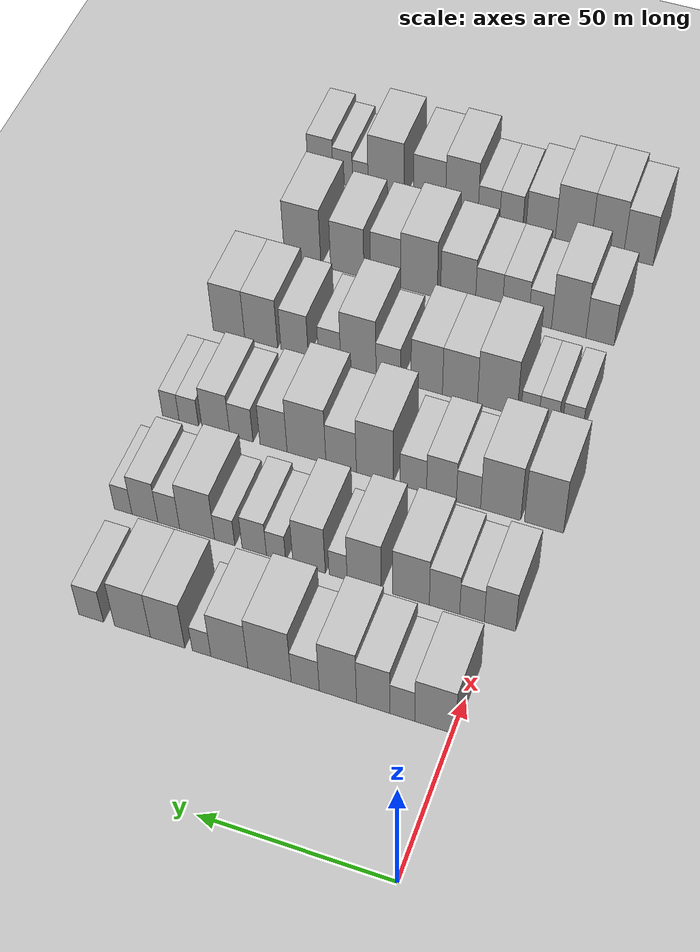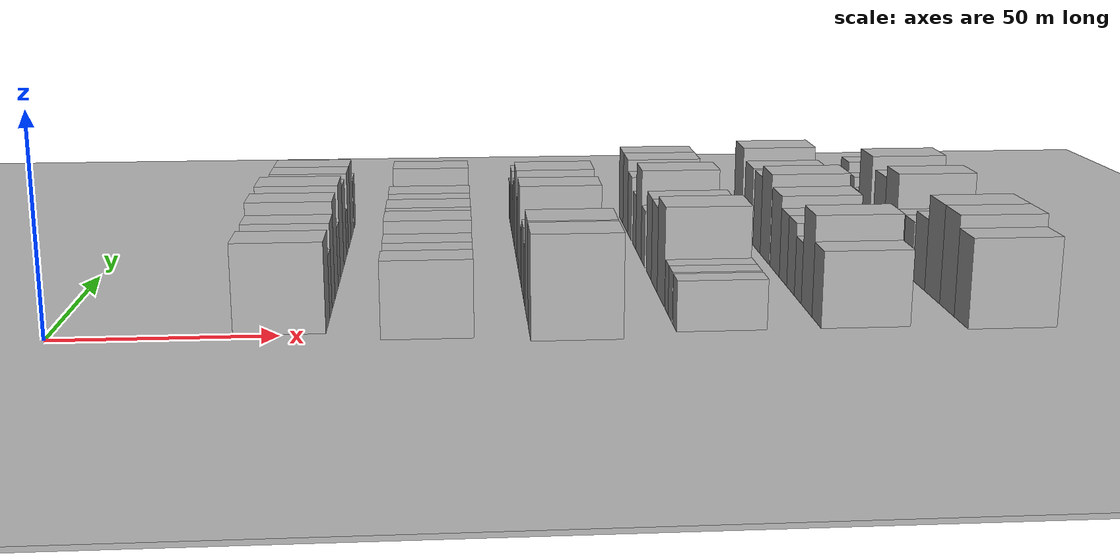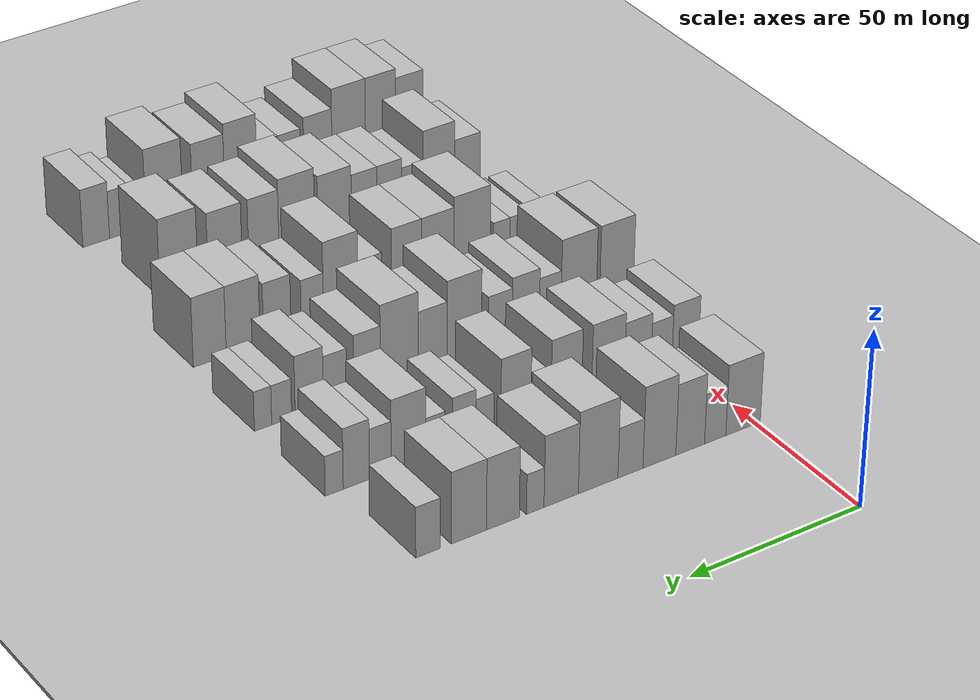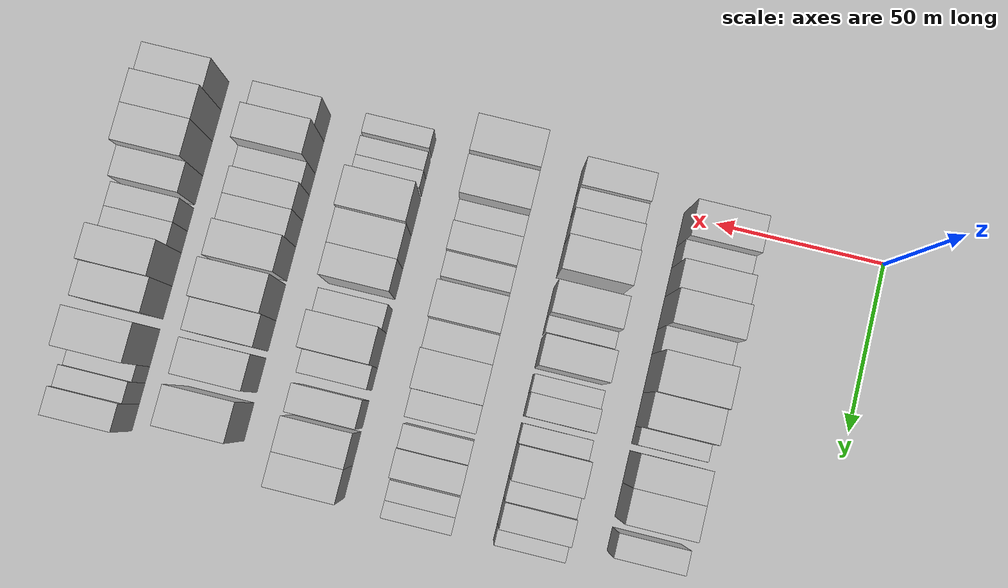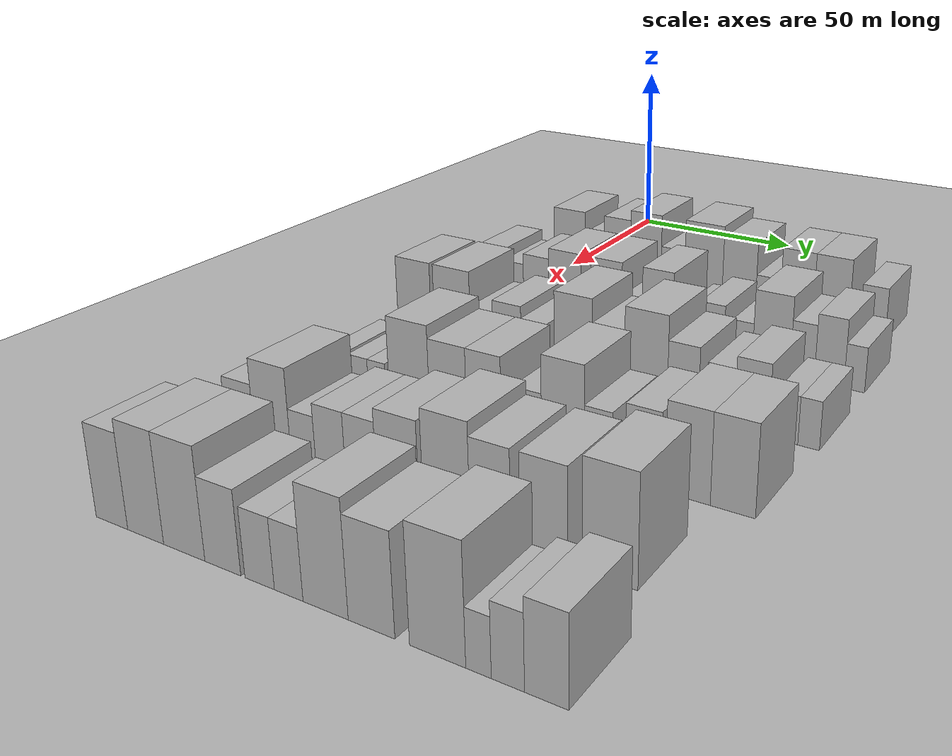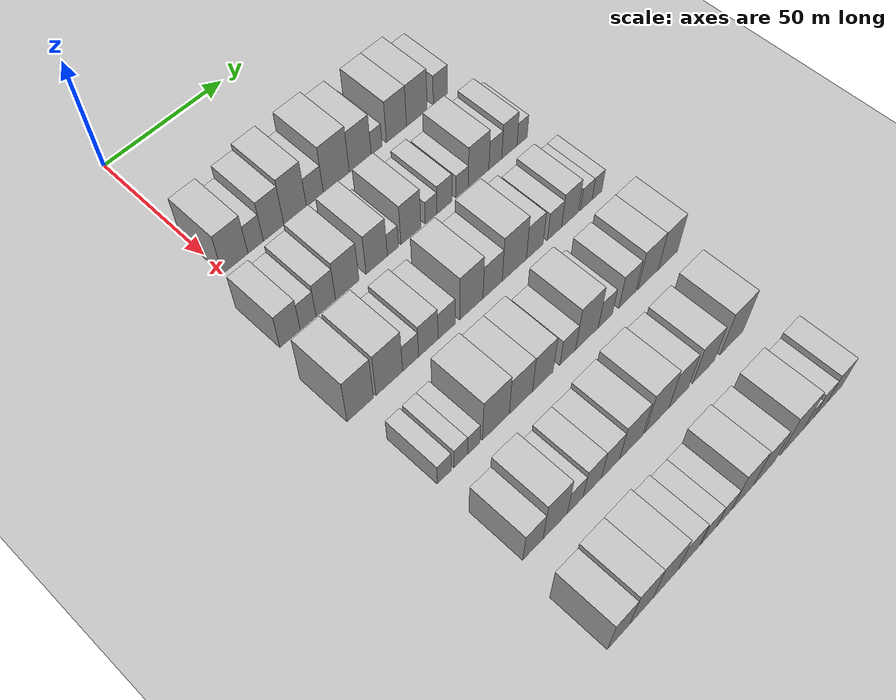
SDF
<sdf version="1.6">
 <world name="default">
  <include><name>ground_plane_1</name><uri>model://HANNAS_ground_plane</uri></include>
  <include>
   <name>ground_plane_2</name>
   <uri>model://HANNAS_ground_plane</uri>
   <pose>100 0 0  0 0 0</pose>
  </include>
  <model name="building_64">
   <static>1</static>
   <pose>50.0000 4.4549 0 0.000000 0.000000 0.000000</pose>
   <link name="link">
    <pose>0 0 10.50 0 0 0</pose>
    <collision name="collision"><geometry><box><size>20.0000 10.4666 21.0000</size></box></geometry></collision>
    <visual name="visual">
     <cast_shadows>0</cast_shadows>
     <geometry><box><size>20.0000 10.4666 21.0000</size></box></geometry>
     <material>
      <script>
       <uri>model://HANNAS_wall/materials/scripts</uri>
       <uri>model://HANNAS_wall/materials/textures</uri>
       <name>vrc/HANNAS_wall</name>
      </script>
     </material>
    </visual>
   </link>
  </model>
  <model name="building_65">
   <static>1</static>
   <pose>50.0000 12.8888 0 0.000000 0.000000 0.000000</pose>
   <link name="link">
    <pose>0 0 7.50 0 0 0</pose>
    <collision name="collision"><geometry><box><size>20.0000 6.4012 15.0000</size></box></geometry></collision>
    <visual name="visual">
     <cast_shadows>0</cast_shadows>
     <geometry><box><size>20.0000 6.4012 15.0000</size></box></geometry>
     <material>
      <script>
       <uri>model://HANNAS_wall/materials/scripts</uri>
       <uri>model://HANNAS_wall/materials/textures</uri>
       <name>vrc/HANNAS_wall</name>
      </script>
     </material>
    </visual>
   </link>
  </model>
  <model name="building_66">
   <static>1</static>
   <pose>50.0000 20.3909 0 0.000000 0.000000 0.000000</pose>
   <link name="link">
    <pose>0 0 10.50 0 0 0</pose>
    <collision name="collision"><geometry><box><size>20.0000 8.6029 21.0000</size></box></geometry></collision>
    <visual name="visual">
     <cast_shadows>0</cast_shadows>
     <geometry><box><size>20.0000 8.6029 21.0000</size></box></geometry>
     <material>
      <script>
       <uri>model://HANNAS_wall/materials/scripts</uri>
       <uri>model://HANNAS_wall/materials/textures</uri>
       <name>vrc/HANNAS_wall</name>
      </script>
     </material>
    </visual>
   </link>
  </model>
  <model name="building_67">
   <static>1</static>
   <pose>50.0000 29.5546 0 0.000000 0.000000 0.000000</pose>
   <link name="link">
    <pose>0 0 12.00 0 0 0</pose>
    <collision name="collision"><geometry><box><size>20.0000 9.7245 24.0000</size></box></geometry></collision>
    <visual name="visual">
     <cast_shadows>0</cast_shadows>
     <geometry><box><size>20.0000 9.7245 24.0000</size></box></geometry>
     <material>
      <script>
       <uri>model://HANNAS_wall/materials/scripts</uri>
       <uri>model://HANNAS_wall/materials/textures</uri>
       <name>vrc/HANNAS_wall</name>
      </script>
     </material>
    </visual>
   </link>
  </model>
  <model name="building_68">
   <static>1</static>
   <pose>50.0000 38.1006 0 0.000000 0.000000 0.000000</pose>
   <link name="link">
    <pose>0 0 7.50 0 0 0</pose>
    <collision name="collision"><geometry><box><size>20.0000 7.3676 15.0000</size></box></geometry></collision>
    <visual name="visual">
     <cast_shadows>0</cast_shadows>
     <geometry><box><size>20.0000 7.3676 15.0000</size></box></geometry>
     <material>
      <script>
       <uri>model://HANNAS_wall/materials/scripts</uri>
       <uri>model://HANNAS_wall/materials/textures</uri>
       <name>vrc/HANNAS_wall</name>
      </script>
     </material>
    </visual>
   </link>
  </model>
  <model name="building_69">
   <static>1</static>
   <pose>50.0000 47.5332 0 0.000000 0.000000 0.000000</pose>
   <link name="link">
    <pose>0 0 12.00 0 0 0</pose>
    <collision name="collision"><geometry><box><size>20.0000 11.4976 24.0000</size></box></geometry></collision>
    <visual name="visual">
     <cast_shadows>0</cast_shadows>
     <geometry><box><size>20.0000 11.4976 24.0000</size></box></geometry>
     <material>
      <script>
       <uri>model://HANNAS_wall/materials/scripts</uri>
       <uri>model://HANNAS_wall/materials/textures</uri>
       <name>vrc/HANNAS_wall</name>
      </script>
     </material>
    </visual>
   </link>
  </model>
  <model name="building_70">
   <static>1</static>
   <pose>50.0000 58.2243 0 0.000000 0.000000 0.000000</pose>
   <link name="link">
    <pose>0 0 10.50 0 0 0</pose>
    <collision name="collision"><geometry><box><size>20.0000 9.8845 21.0000</size></box></geometry></collision>
    <visual name="visual">
     <cast_shadows>0</cast_shadows>
     <geometry><box><size>20.0000 9.8845 21.0000</size></box></geometry>
     <material>
      <script>
       <uri>model://HANNAS_wall/materials/scripts</uri>
       <uri>model://HANNAS_wall/materials/textures</uri>
       <name>vrc/HANNAS_wall</name>
      </script>
     </material>
    </visual>
   </link>
  </model>
  <model name="building_71">
   <static>1</static>
   <pose>50.0000 65.6764 0 0.000000 0.000000 0.000000</pose>
   <link name="link">
    <pose>0 0 6.00 0 0 0</pose>
    <collision name="collision"><geometry><box><size>20.0000 5.0198 12.0000</size></box></geometry></collision>
    <visual name="visual">
     <cast_shadows>0</cast_shadows>
     <geometry><box><size>20.0000 5.0198 12.0000</size></box></geometry>
     <material>
      <script>
       <uri>model://HANNAS_wall/materials/scripts</uri>
       <uri>model://HANNAS_wall/materials/textures</uri>
       <name>vrc/HANNAS_wall</name>
      </script>
     </material>
    </visual>
   </link>
  </model>
  <model name="building_72">
   <static>1</static>
   <pose>50.0000 74.8560 0 0.000000 0.000000 0.000000</pose>
   <link name="link">
    <pose>0 0 10.50 0 0 0</pose>
    <collision name="collision"><geometry><box><size>20.0000 9.3394 21.0000</size></box></geometry></collision>
    <visual name="visual">
     <cast_shadows>0</cast_shadows>
     <geometry><box><size>20.0000 9.3394 21.0000</size></box></geometry>
     <material>
      <script>
       <uri>model://HANNAS_wall/materials/scripts</uri>
       <uri>model://HANNAS_wall/materials/textures</uri>
       <name>vrc/HANNAS_wall</name>
      </script>
     </material>
    </visual>
   </link>
  </model>
  <model name="building_73">
   <static>1</static>
   <pose>50.0000 84.4274 0 0.000000 0.000000 0.000000</pose>
   <link name="link">
    <pose>0 0 10.50 0 0 0</pose>
    <collision name="collision"><geometry><box><size>20.0000 9.8034 21.0000</size></box></geometry></collision>
    <visual name="visual">
     <cast_shadows>0</cast_shadows>
     <geometry><box><size>20.0000 9.8034 21.0000</size></box></geometry>
     <material>
      <script>
       <uri>model://HANNAS_wall/materials/scripts</uri>
       <uri>model://HANNAS_wall/materials/textures</uri>
       <name>vrc/HANNAS_wall</name>
      </script>
     </material>
    </visual>
   </link>
  </model>
  <model name="building_74">
   <static>1</static>
   <pose>50.0000 95.7472 0 0.000000 0.000000 0.000000</pose>
   <link name="link">
    <pose>0 0 7.50 0 0 0</pose>
    <collision name="collision"><geometry><box><size>20.0000 6.8361 15.0000</size></box></geometry></collision>
    <visual name="visual">
     <cast_shadows>0</cast_shadows>
     <geometry><box><size>20.0000 6.8361 15.0000</size></box></geometry>
     <material>
      <script>
       <uri>model://HANNAS_wall/materials/scripts</uri>
       <uri>model://HANNAS_wall/materials/textures</uri>
       <name>vrc/HANNAS_wall</name>
      </script>
     </material>
    </visual>
   </link>
  </model>
  <model name="building_186">
   <static>1</static>
   <pose>82.0000 -1.7584 0 0.000000 0.000000 0.000000</pose>
   <link name="link">
    <pose>0 0 9.00 0 0 0</pose>
    <collision name="collision"><geometry><box><size>20.0000 8.2280 18.0000</size></box></geometry></collision>
    <visual name="visual">
     <cast_shadows>0</cast_shadows>
     <geometry><box><size>20.0000 8.2280 18.0000</size></box></geometry>
     <material>
      <script>
       <uri>model://HANNAS_wall/materials/scripts</uri>
       <uri>model://HANNAS_wall/materials/textures</uri>
       <name>vrc/HANNAS_wall</name>
      </script>
     </material>
    </visual>
   </link>
  </model>
  <model name="building_187">
   <static>1</static>
   <pose>82.0000 5.6068 0 0.000000 0.000000 0.000000</pose>
   <link name="link">
    <pose>0 0 7.50 0 0 0</pose>
    <collision name="collision"><geometry><box><size>20.0000 6.5024 15.0000</size></box></geometry></collision>
    <visual name="visual">
     <cast_shadows>0</cast_shadows>
     <geometry><box><size>20.0000 6.5024 15.0000</size></box></geometry>
     <material>
      <script>
       <uri>model://HANNAS_wall/materials/scripts</uri>
       <uri>model://HANNAS_wall/materials/textures</uri>
       <name>vrc/HANNAS_wall</name>
      </script>
     </material>
    </visual>
   </link>
  </model>
  <model name="building_188">
   <static>1</static>
   <pose>82.0000 12.8947 0 0.000000 0.000000 0.000000</pose>
   <link name="link">
    <pose>0 0 9.00 0 0 0</pose>
    <collision name="collision"><geometry><box><size>20.0000 8.0734 18.0000</size></box></geometry></collision>
    <visual name="visual">
     <cast_shadows>0</cast_shadows>
     <geometry><box><size>20.0000 8.0734 18.0000</size></box></geometry>
     <material>
      <script>
       <uri>model://HANNAS_wall/materials/scripts</uri>
       <uri>model://HANNAS_wall/materials/textures</uri>
       <name>vrc/HANNAS_wall</name>
      </script>
     </material>
    </visual>
   </link>
  </model>
  <model name="building_189">
   <static>1</static>
   <pose>82.0000 21.8742 0 0.000000 0.000000 0.000000</pose>
   <link name="link">
    <pose>0 0 10.50 0 0 0</pose>
    <collision name="collision"><geometry><box><size>20.0000 9.8857 21.0000</size></box></geometry></collision>
    <visual name="visual">
     <cast_shadows>0</cast_shadows>
     <geometry><box><size>20.0000 9.8857 21.0000</size></box></geometry>
     <material>
      <script>
       <uri>model://HANNAS_wall/materials/scripts</uri>
       <uri>model://HANNAS_wall/materials/textures</uri>
       <name>vrc/HANNAS_wall</name>
      </script>
     </material>
    </visual>
   </link>
  </model>
  <model name="building_190">
   <static>1</static>
   <pose>82.0000 34.4295 0 0.000000 0.000000 0.000000</pose>
   <link name="link">
    <pose>0 0 10.50 0 0 0</pose>
    <collision name="collision"><geometry><box><size>20.0000 9.2248 21.0000</size></box></geometry></collision>
    <visual name="visual">
     <cast_shadows>0</cast_shadows>
     <geometry><box><size>20.0000 9.2248 21.0000</size></box></geometry>
     <material>
      <script>
       <uri>model://HANNAS_wall/materials/scripts</uri>
       <uri>model://HANNAS_wall/materials/textures</uri>
       <name>vrc/HANNAS_wall</name>
      </script>
     </material>
    </visual>
   </link>
  </model>
  <model name="building_191">
   <static>1</static>
   <pose>82.0000 41.5016 0 0.000000 0.000000 0.000000</pose>
   <link name="link">
    <pose>0 0 6.00 0 0 0</pose>
    <collision name="collision"><geometry><box><size>20.0000 4.9195 12.0000</size></box></geometry></collision>
    <visual name="visual">
     <cast_shadows>0</cast_shadows>
     <geometry><box><size>20.0000 4.9195 12.0000</size></box></geometry>
     <material>
      <script>
       <uri>model://HANNAS_wall/materials/scripts</uri>
       <uri>model://HANNAS_wall/materials/textures</uri>
       <name>vrc/HANNAS_wall</name>
      </script>
     </material>
    </visual>
   </link>
  </model>
  <model name="building_192">
   <static>1</static>
   <pose>82.0000 49.4007 0 0.000000 0.000000 0.000000</pose>
   <link name="link">
    <pose>0 0 10.50 0 0 0</pose>
    <collision name="collision"><geometry><box><size>20.0000 8.8786 21.0000</size></box></geometry></collision>
    <visual name="visual">
     <cast_shadows>0</cast_shadows>
     <geometry><box><size>20.0000 8.8786 21.0000</size></box></geometry>
     <material>
      <script>
       <uri>model://HANNAS_wall/materials/scripts</uri>
       <uri>model://HANNAS_wall/materials/textures</uri>
       <name>vrc/HANNAS_wall</name>
      </script>
     </material>
    </visual>
   </link>
  </model>
  <model name="building_193">
   <static>1</static>
   <pose>82.0000 58.4938 0 0.000000 0.000000 0.000000</pose>
   <link name="link">
    <pose>0 0 6.00 0 0 0</pose>
    <collision name="collision"><geometry><box><size>20.0000 5.3077 12.0000</size></box></geometry></collision>
    <visual name="visual">
     <cast_shadows>0</cast_shadows>
     <geometry><box><size>20.0000 5.3077 12.0000</size></box></geometry>
     <material>
      <script>
       <uri>model://HANNAS_wall/materials/scripts</uri>
       <uri>model://HANNAS_wall/materials/textures</uri>
       <name>vrc/HANNAS_wall</name>
      </script>
     </material>
    </visual>
   </link>
  </model>
  <model name="building_194">
   <static>1</static>
   <pose>82.0000 64.5343 0 0.000000 0.000000 0.000000</pose>
   <link name="link">
    <pose>0 0 7.50 0 0 0</pose>
    <collision name="collision"><geometry><box><size>20.0000 6.7734 15.0000</size></box></geometry></collision>
    <visual name="visual">
     <cast_shadows>0</cast_shadows>
     <geometry><box><size>20.0000 6.7734 15.0000</size></box></geometry>
     <material>
      <script>
       <uri>model://HANNAS_wall/materials/scripts</uri>
       <uri>model://HANNAS_wall/materials/textures</uri>
       <name>vrc/HANNAS_wall</name>
      </script>
     </material>
    </visual>
   </link>
  </model>
  <model name="building_195">
   <static>1</static>
   <pose>82.0000 72.7479 0 0.000000 0.000000 0.000000</pose>
   <link name="link">
    <pose>0 0 6.00 0 0 0</pose>
    <collision name="collision"><geometry><box><size>20.0000 5.6538 12.0000</size></box></geometry></collision>
    <visual name="visual">
     <cast_shadows>0</cast_shadows>
     <geometry><box><size>20.0000 5.6538 12.0000</size></box></geometry>
     <material>
      <script>
       <uri>model://HANNAS_wall/materials/scripts</uri>
       <uri>model://HANNAS_wall/materials/textures</uri>
       <name>vrc/HANNAS_wall</name>
      </script>
     </material>
    </visual>
   </link>
  </model>
  <model name="building_196">
   <static>1</static>
   <pose>82.0000 80.4787 0 0.000000 0.000000 0.000000</pose>
   <link name="link">
    <pose>0 0 10.50 0 0 0</pose>
    <collision name="collision"><geometry><box><size>20.0000 9.8078 21.0000</size></box></geometry></collision>
    <visual name="visual">
     <cast_shadows>0</cast_shadows>
     <geometry><box><size>20.0000 9.8078 21.0000</size></box></geometry>
     <material>
      <script>
       <uri>model://HANNAS_wall/materials/scripts</uri>
       <uri>model://HANNAS_wall/materials/textures</uri>
       <name>vrc/HANNAS_wall</name>
      </script>
     </material>
    </visual>
   </link>
  </model>
  <model name="building_197">
   <static>1</static>
   <pose>82.0000 88.4690 0 0.000000 0.000000 0.000000</pose>
   <link name="link">
    <pose>0 0 7.50 0 0 0</pose>
    <collision name="collision"><geometry><box><size>20.0000 6.1726 15.0000</size></box></geometry></collision>
    <visual name="visual">
     <cast_shadows>0</cast_shadows>
     <geometry><box><size>20.0000 6.1726 15.0000</size></box></geometry>
     <material>
      <script>
       <uri>model://HANNAS_wall/materials/scripts</uri>
       <uri>model://HANNAS_wall/materials/textures</uri>
       <name>vrc/HANNAS_wall</name>
      </script>
     </material>
    </visual>
   </link>
  </model>
  <model name="building_198">
   <static>1</static>
   <pose>82.0000 95.2217 0 0.000000 0.000000 0.000000</pose>
   <link name="link">
    <pose>0 0 9.00 0 0 0</pose>
    <collision name="collision"><geometry><box><size>20.0000 7.3330 18.0000</size></box></geometry></collision>
    <visual name="visual">
     <cast_shadows>0</cast_shadows>
     <geometry><box><size>20.0000 7.3330 18.0000</size></box></geometry>
     <material>
      <script>
       <uri>model://HANNAS_wall/materials/scripts</uri>
       <uri>model://HANNAS_wall/materials/textures</uri>
       <name>vrc/HANNAS_wall</name>
      </script>
     </material>
    </visual>
   </link>
  </model>
  <model name="building_199">
   <static>1</static>
   <pose>82.0000 101.4120 0 0.000000 0.000000 0.000000</pose>
   <link name="link">
    <pose>0 0 6.00 0 0 0</pose>
    <collision name="collision"><geometry><box><size>20.0000 5.0475 12.0000</size></box></geometry></collision>
    <visual name="visual">
     <cast_shadows>0</cast_shadows>
     <geometry><box><size>20.0000 5.0475 12.0000</size></box></geometry>
     <material>
      <script>
       <uri>model://HANNAS_wall/materials/scripts</uri>
       <uri>model://HANNAS_wall/materials/textures</uri>
       <name>vrc/HANNAS_wall</name>
      </script>
     </material>
    </visual>
   </link>
  </model>
  <model name="building_305">
   <static>1</static>
   <pose>114.0000 -3.5317 0 0.000000 0.000000 0.000000</pose>
   <link name="link">
    <pose>0 0 12.00 0 0 0</pose>
    <collision name="collision"><geometry><box><size>20.0000 10.6159 24.0000</size></box></geometry></collision>
    <visual name="visual">
     <cast_shadows>0</cast_shadows>
     <geometry><box><size>20.0000 10.6159 24.0000</size></box></geometry>
     <material>
      <script>
       <uri>model://HANNAS_wall/materials/scripts</uri>
       <uri>model://HANNAS_wall/materials/textures</uri>
       <name>vrc/HANNAS_wall</name>
      </script>
     </material>
    </visual>
   </link>
  </model>
  <model name="building_306">
   <static>1</static>
   <pose>114.0000 8.2692 0 0.000000 0.000000 0.000000</pose>
   <link name="link">
    <pose>0 0 12.00 0 0 0</pose>
    <collision name="collision"><geometry><box><size>20.0000 10.9860 24.0000</size></box></geometry></collision>
    <visual name="visual">
     <cast_shadows>0</cast_shadows>
     <geometry><box><size>20.0000 10.9860 24.0000</size></box></geometry>
     <material>
      <script>
       <uri>model://HANNAS_wall/materials/scripts</uri>
       <uri>model://HANNAS_wall/materials/textures</uri>
       <name>vrc/HANNAS_wall</name>
      </script>
     </material>
    </visual>
   </link>
  </model>
  <model name="building_307">
   <static>1</static>
   <pose>114.0000 17.0872 0 0.000000 0.000000 0.000000</pose>
   <link name="link">
    <pose>0 0 7.50 0 0 0</pose>
    <collision name="collision"><geometry><box><size>20.0000 6.6499 15.0000</size></box></geometry></collision>
    <visual name="visual">
     <cast_shadows>0</cast_shadows>
     <geometry><box><size>20.0000 6.6499 15.0000</size></box></geometry>
     <material>
      <script>
       <uri>model://HANNAS_wall/materials/scripts</uri>
       <uri>model://HANNAS_wall/materials/textures</uri>
       <name>vrc/HANNAS_wall</name>
      </script>
     </material>
    </visual>
   </link>
  </model>
  <model name="building_308">
   <static>1</static>
   <pose>114.0000 24.5421 0 0.000000 0.000000 0.000000</pose>
   <link name="link">
    <pose>0 0 9.00 0 0 0</pose>
    <collision name="collision"><geometry><box><size>20.0000 8.2599 18.0000</size></box></geometry></collision>
    <visual name="visual">
     <cast_shadows>0</cast_shadows>
     <geometry><box><size>20.0000 8.2599 18.0000</size></box></geometry>
     <material>
      <script>
       <uri>model://HANNAS_wall/materials/scripts</uri>
       <uri>model://HANNAS_wall/materials/textures</uri>
       <name>vrc/HANNAS_wall</name>
      </script>
     </material>
    </visual>
   </link>
  </model>
  <model name="building_309">
   <static>1</static>
   <pose>114.0000 32.3415 0 0.000000 0.000000 0.000000</pose>
   <link name="link">
    <pose>0 0 7.50 0 0 0</pose>
    <collision name="collision"><geometry><box><size>20.0000 7.3390 15.0000</size></box></geometry></collision>
    <visual name="visual">
     <cast_shadows>0</cast_shadows>
     <geometry><box><size>20.0000 7.3390 15.0000</size></box></geometry>
     <material>
      <script>
       <uri>model://HANNAS_wall/materials/scripts</uri>
       <uri>model://HANNAS_wall/materials/textures</uri>
       <name>vrc/HANNAS_wall</name>
      </script>
     </material>
    </visual>
   </link>
  </model>
  <model name="building_310">
   <static>1</static>
   <pose>114.0000 43.1629 0 0.000000 0.000000 0.000000</pose>
   <link name="link">
    <pose>0 0 12.00 0 0 0</pose>
    <collision name="collision"><geometry><box><size>20.0000 10.3037 24.0000</size></box></geometry></collision>
    <visual name="visual">
     <cast_shadows>0</cast_shadows>
     <geometry><box><size>20.0000 10.3037 24.0000</size></box></geometry>
     <material>
      <script>
       <uri>model://HANNAS_wall/materials/scripts</uri>
       <uri>model://HANNAS_wall/materials/textures</uri>
       <name>vrc/HANNAS_wall</name>
      </script>
     </material>
    </visual>
   </link>
  </model>
  <model name="building_311">
   <static>1</static>
   <pose>114.0000 52.6234 0 0.000000 0.000000 0.000000</pose>
   <link name="link">
    <pose>0 0 9.00 0 0 0</pose>
    <collision name="collision"><geometry><box><size>20.0000 8.6174 18.0000</size></box></geometry></collision>
    <visual name="visual">
     <cast_shadows>0</cast_shadows>
     <geometry><box><size>20.0000 8.6174 18.0000</size></box></geometry>
     <material>
      <script>
       <uri>model://HANNAS_wall/materials/scripts</uri>
       <uri>model://HANNAS_wall/materials/textures</uri>
       <name>vrc/HANNAS_wall</name>
      </script>
     </material>
    </visual>
   </link>
  </model>
  <model name="building_312">
   <static>1</static>
   <pose>114.0000 62.4774 0 0.000000 0.000000 0.000000</pose>
   <link name="link">
    <pose>0 0 12.00 0 0 0</pose>
    <collision name="collision"><geometry><box><size>20.0000 11.0906 24.0000</size></box></geometry></collision>
    <visual name="visual">
     <cast_shadows>0</cast_shadows>
     <geometry><box><size>20.0000 11.0906 24.0000</size></box></geometry>
     <material>
      <script>
       <uri>model://HANNAS_wall/materials/scripts</uri>
       <uri>model://HANNAS_wall/materials/textures</uri>
       <name>vrc/HANNAS_wall</name>
      </script>
     </material>
    </visual>
   </link>
  </model>
  <model name="building_313">
   <static>1</static>
   <pose>114.0000 71.9259 0 0.000000 0.000000 0.000000</pose>
   <link name="link">
    <pose>0 0 9.00 0 0 0</pose>
    <collision name="collision"><geometry><box><size>20.0000 7.8064 18.0000</size></box></geometry></collision>
    <visual name="visual">
     <cast_shadows>0</cast_shadows>
     <geometry><box><size>20.0000 7.8064 18.0000</size></box></geometry>
     <material>
      <script>
       <uri>model://HANNAS_wall/materials/scripts</uri>
       <uri>model://HANNAS_wall/materials/textures</uri>
       <name>vrc/HANNAS_wall</name>
      </script>
     </material>
    </visual>
   </link>
  </model>
  <model name="building_314">
   <static>1</static>
   <pose>114.0000 81.1985 0 0.000000 0.000000 0.000000</pose>
   <link name="link">
    <pose>0 0 7.50 0 0 0</pose>
    <collision name="collision"><geometry><box><size>20.0000 6.7387 15.0000</size></box></geometry></collision>
    <visual name="visual">
     <cast_shadows>0</cast_shadows>
     <geometry><box><size>20.0000 6.7387 15.0000</size></box></geometry>
     <material>
      <script>
       <uri>model://HANNAS_wall/materials/scripts</uri>
       <uri>model://HANNAS_wall/materials/textures</uri>
       <name>vrc/HANNAS_wall</name>
      </script>
     </material>
    </visual>
   </link>
  </model>
  <model name="building_315">
   <static>1</static>
   <pose>114.0000 88.6205 0 0.000000 0.000000 0.000000</pose>
   <link name="link">
    <pose>0 0 9.00 0 0 0</pose>
    <collision name="collision"><geometry><box><size>20.0000 8.1054 18.0000</size></box></geometry></collision>
    <visual name="visual">
     <cast_shadows>0</cast_shadows>
     <geometry><box><size>20.0000 8.1054 18.0000</size></box></geometry>
     <material>
      <script>
       <uri>model://HANNAS_wall/materials/scripts</uri>
       <uri>model://HANNAS_wall/materials/textures</uri>
       <name>vrc/HANNAS_wall</name>
      </script>
     </material>
    </visual>
   </link>
  </model>
  <model name="building_316">
   <static>1</static>
   <pose>114.0000 96.5237 0 0.000000 0.000000 0.000000</pose>
   <link name="link">
    <pose>0 0 6.00 0 0 0</pose>
    <collision name="collision"><geometry><box><size>20.0000 5.7010 12.0000</size></box></geometry></collision>
    <visual name="visual">
     <cast_shadows>0</cast_shadows>
     <geometry><box><size>20.0000 5.7010 12.0000</size></box></geometry>
     <material>
      <script>
       <uri>model://HANNAS_wall/materials/scripts</uri>
       <uri>model://HANNAS_wall/materials/textures</uri>
       <name>vrc/HANNAS_wall</name>
      </script>
     </material>
    </visual>
   </link>
  </model>
  <model name="building_317">
   <static>1</static>
   <pose>114.0000 101.8096 0 0.000000 0.000000 0.000000</pose>
   <link name="link">
    <pose>0 0 6.00 0 0 0</pose>
    <collision name="collision"><geometry><box><size>20.0000 4.8709 12.0000</size></box></geometry></collision>
    <visual name="visual">
     <cast_shadows>0</cast_shadows>
     <geometry><box><size>20.0000 4.8709 12.0000</size></box></geometry>
     <material>
      <script>
       <uri>model://HANNAS_wall/materials/scripts</uri>
       <uri>model://HANNAS_wall/materials/textures</uri>
       <name>vrc/HANNAS_wall</name>
      </script>
     </material>
    </visual>
   </link>
  </model>
  <model name="building_431">
   <static>1</static>
   <pose>146.0000 -1.7772 0 0.000000 0.000000 0.000000</pose>
   <link name="link">
    <pose>0 0 6.00 0 0 0</pose>
    <collision name="collision"><geometry><box><size>20.0000 5.6788 12.0000</size></box></geometry></collision>
    <visual name="visual">
     <cast_shadows>0</cast_shadows>
     <geometry><box><size>20.0000 5.6788 12.0000</size></box></geometry>
     <material>
      <script>
       <uri>model://HANNAS_wall/materials/scripts</uri>
       <uri>model://HANNAS_wall/materials/textures</uri>
       <name>vrc/HANNAS_wall</name>
      </script>
     </material>
    </visual>
   </link>
  </model>
  <model name="building_432">
   <static>1</static>
   <pose>146.0000 4.8628 0 0.000000 0.000000 0.000000</pose>
   <link name="link">
    <pose>0 0 6.00 0 0 0</pose>
    <collision name="collision"><geometry><box><size>20.0000 5.6014 12.0000</size></box></geometry></collision>
    <visual name="visual">
     <cast_shadows>0</cast_shadows>
     <geometry><box><size>20.0000 5.6014 12.0000</size></box></geometry>
     <material>
      <script>
       <uri>model://HANNAS_wall/materials/scripts</uri>
       <uri>model://HANNAS_wall/materials/textures</uri>
       <name>vrc/HANNAS_wall</name>
      </script>
     </material>
    </visual>
   </link>
  </model>
  <model name="building_433">
   <static>1</static>
   <pose>146.0000 10.2326 0 0.000000 0.000000 0.000000</pose>
   <link name="link">
    <pose>0 0 6.00 0 0 0</pose>
    <collision name="collision"><geometry><box><size>20.0000 5.1382 12.0000</size></box></geometry></collision>
    <visual name="visual">
     <cast_shadows>0</cast_shadows>
     <geometry><box><size>20.0000 5.1382 12.0000</size></box></geometry>
     <material>
      <script>
       <uri>model://HANNAS_wall/materials/scripts</uri>
       <uri>model://HANNAS_wall/materials/textures</uri>
       <name>vrc/HANNAS_wall</name>
      </script>
     </material>
    </visual>
   </link>
  </model>
  <model name="building_434">
   <static>1</static>
   <pose>146.0000 19.4424 0 0.000000 0.000000 0.000000</pose>
   <link name="link">
    <pose>0 0 12.00 0 0 0</pose>
    <collision name="collision"><geometry><box><size>20.0000 11.2814 24.0000</size></box></geometry></collision>
    <visual name="visual">
     <cast_shadows>0</cast_shadows>
     <geometry><box><size>20.0000 11.2814 24.0000</size></box></geometry>
     <material>
      <script>
       <uri>model://HANNAS_wall/materials/scripts</uri>
       <uri>model://HANNAS_wall/materials/textures</uri>
       <name>vrc/HANNAS_wall</name>
      </script>
     </material>
    </visual>
   </link>
  </model>
  <model name="building_435">
   <static>1</static>
   <pose>146.0000 30.1023 0 0.000000 0.000000 0.000000</pose>
   <link name="link">
    <pose>0 0 10.50 0 0 0</pose>
    <collision name="collision"><geometry><box><size>20.0000 10.0384 21.0000</size></box></geometry></collision>
    <visual name="visual">
     <cast_shadows>0</cast_shadows>
     <geometry><box><size>20.0000 10.0384 21.0000</size></box></geometry>
     <material>
      <script>
       <uri>model://HANNAS_wall/materials/scripts</uri>
       <uri>model://HANNAS_wall/materials/textures</uri>
       <name>vrc/HANNAS_wall</name>
      </script>
     </material>
    </visual>
   </link>
  </model>
  <model name="building_436">
   <static>1</static>
   <pose>146.0000 39.6652 0 0.000000 0.000000 0.000000</pose>
   <link name="link">
    <pose>0 0 10.50 0 0 0</pose>
    <collision name="collision"><geometry><box><size>20.0000 9.0874 21.0000</size></box></geometry></collision>
    <visual name="visual">
     <cast_shadows>0</cast_shadows>
     <geometry><box><size>20.0000 9.0874 21.0000</size></box></geometry>
     <material>
      <script>
       <uri>model://HANNAS_wall/materials/scripts</uri>
       <uri>model://HANNAS_wall/materials/textures</uri>
       <name>vrc/HANNAS_wall</name>
      </script>
     </material>
    </visual>
   </link>
  </model>
  <model name="building_437">
   <static>1</static>
   <pose>146.0000 50.7747 0 0.000000 0.000000 0.000000</pose>
   <link name="link">
    <pose>0 0 7.50 0 0 0</pose>
    <collision name="collision"><geometry><box><size>20.0000 7.1317 15.0000</size></box></geometry></collision>
    <visual name="visual">
     <cast_shadows>0</cast_shadows>
     <geometry><box><size>20.0000 7.1317 15.0000</size></box></geometry>
     <material>
      <script>
       <uri>model://HANNAS_wall/materials/scripts</uri>
       <uri>model://HANNAS_wall/materials/textures</uri>
       <name>vrc/HANNAS_wall</name>
      </script>
     </material>
    </visual>
   </link>
  </model>
  <model name="building_438">
   <static>1</static>
   <pose>146.0000 59.5236 0 0.000000 0.000000 0.000000</pose>
   <link name="link">
    <pose>0 0 12.00 0 0 0</pose>
    <collision name="collision"><geometry><box><size>20.0000 10.3661 24.0000</size></box></geometry></collision>
    <visual name="visual">
     <cast_shadows>0</cast_shadows>
     <geometry><box><size>20.0000 10.3661 24.0000</size></box></geometry>
     <material>
      <script>
       <uri>model://HANNAS_wall/materials/scripts</uri>
       <uri>model://HANNAS_wall/materials/textures</uri>
       <name>vrc/HANNAS_wall</name>
      </script>
     </material>
    </visual>
   </link>
  </model>
  <model name="building_439">
   <static>1</static>
   <pose>146.0000 68.0052 0 0.000000 0.000000 0.000000</pose>
   <link name="link">
    <pose>0 0 7.50 0 0 0</pose>
    <collision name="collision"><geometry><box><size>20.0000 6.5971 15.0000</size></box></geometry></collision>
    <visual name="visual">
     <cast_shadows>0</cast_shadows>
     <geometry><box><size>20.0000 6.5971 15.0000</size></box></geometry>
     <material>
      <script>
       <uri>model://HANNAS_wall/materials/scripts</uri>
       <uri>model://HANNAS_wall/materials/textures</uri>
       <name>vrc/HANNAS_wall</name>
      </script>
     </material>
    </visual>
   </link>
  </model>
  <model name="building_440">
   <static>1</static>
   <pose>146.0000 78.3625 0 0.000000 0.000000 0.000000</pose>
   <link name="link">
    <pose>0 0 9.00 0 0 0</pose>
    <collision name="collision"><geometry><box><size>20.0000 8.1173 18.0000</size></box></geometry></collision>
    <visual name="visual">
     <cast_shadows>0</cast_shadows>
     <geometry><box><size>20.0000 8.1173 18.0000</size></box></geometry>
     <material>
      <script>
       <uri>model://HANNAS_wall/materials/scripts</uri>
       <uri>model://HANNAS_wall/materials/textures</uri>
       <name>vrc/HANNAS_wall</name>
      </script>
     </material>
    </visual>
   </link>
  </model>
  <model name="building_441">
   <static>1</static>
   <pose>146.0000 88.3503 0 0.000000 0.000000 0.000000</pose>
   <link name="link">
    <pose>0 0 10.50 0 0 0</pose>
    <collision name="collision"><geometry><box><size>20.0000 9.8583 21.0000</size></box></geometry></collision>
    <visual name="visual">
     <cast_shadows>0</cast_shadows>
     <geometry><box><size>20.0000 9.8583 21.0000</size></box></geometry>
     <material>
      <script>
       <uri>model://HANNAS_wall/materials/scripts</uri>
       <uri>model://HANNAS_wall/materials/textures</uri>
       <name>vrc/HANNAS_wall</name>
      </script>
     </material>
    </visual>
   </link>
  </model>
  <model name="building_442">
   <static>1</static>
   <pose>146.0000 98.0319 0 0.000000 0.000000 0.000000</pose>
   <link name="link">
    <pose>0 0 10.50 0 0 0</pose>
    <collision name="collision"><geometry><box><size>20.0000 9.5049 21.0000</size></box></geometry></collision>
    <visual name="visual">
     <cast_shadows>0</cast_shadows>
     <geometry><box><size>20.0000 9.5049 21.0000</size></box></geometry>
     <material>
      <script>
       <uri>model://HANNAS_wall/materials/scripts</uri>
       <uri>model://HANNAS_wall/materials/textures</uri>
       <name>vrc/HANNAS_wall</name>
      </script>
     </material>
    </visual>
   </link>
  </model>
  <model name="building_549">
   <static>1</static>
   <pose>178.0000 -0.3436 0 0.000000 0.000000 0.000000</pose>
   <link name="link">
    <pose>0 0 9.00 0 0 0</pose>
    <collision name="collision"><geometry><box><size>20.0000 8.1888 18.0000</size></box></geometry></collision>
    <visual name="visual">
     <cast_shadows>0</cast_shadows>
     <geometry><box><size>20.0000 8.1888 18.0000</size></box></geometry>
     <material>
      <script>
       <uri>model://HANNAS_wall/materials/scripts</uri>
       <uri>model://HANNAS_wall/materials/textures</uri>
       <name>vrc/HANNAS_wall</name>
      </script>
     </material>
    </visual>
   </link>
  </model>
  <model name="building_550">
   <static>1</static>
   <pose>178.0000 8.7544 0 0.000000 0.000000 0.000000</pose>
   <link name="link">
    <pose>0 0 12.00 0 0 0</pose>
    <collision name="collision"><geometry><box><size>20.0000 10.0072 24.0000</size></box></geometry></collision>
    <visual name="visual">
     <cast_shadows>0</cast_shadows>
     <geometry><box><size>20.0000 10.0072 24.0000</size></box></geometry>
     <material>
      <script>
       <uri>model://HANNAS_wall/materials/scripts</uri>
       <uri>model://HANNAS_wall/materials/textures</uri>
       <name>vrc/HANNAS_wall</name>
      </script>
     </material>
    </visual>
   </link>
  </model>
  <model name="building_551">
   <static>1</static>
   <pose>178.0000 17.1059 0 0.000000 0.000000 0.000000</pose>
   <link name="link">
    <pose>0 0 7.50 0 0 0</pose>
    <collision name="collision"><geometry><box><size>20.0000 6.6957 15.0000</size></box></geometry></collision>
    <visual name="visual">
     <cast_shadows>0</cast_shadows>
     <geometry><box><size>20.0000 6.6957 15.0000</size></box></geometry>
     <material>
      <script>
       <uri>model://HANNAS_wall/materials/scripts</uri>
       <uri>model://HANNAS_wall/materials/textures</uri>
       <name>vrc/HANNAS_wall</name>
      </script>
     </material>
    </visual>
   </link>
  </model>
  <model name="building_552">
   <static>1</static>
   <pose>178.0000 24.3603 0 0.000000 0.000000 0.000000</pose>
   <link name="link">
    <pose>0 0 9.00 0 0 0</pose>
    <collision name="collision"><geometry><box><size>20.0000 7.8132 18.0000</size></box></geometry></collision>
    <visual name="visual">
     <cast_shadows>0</cast_shadows>
     <geometry><box><size>20.0000 7.8132 18.0000</size></box></geometry>
     <material>
      <script>
       <uri>model://HANNAS_wall/materials/scripts</uri>
       <uri>model://HANNAS_wall/materials/textures</uri>
       <name>vrc/HANNAS_wall</name>
      </script>
     </material>
    </visual>
   </link>
  </model>
  <model name="building_553">
   <static>1</static>
   <pose>178.0000 32.2338 0 0.000000 0.000000 0.000000</pose>
   <link name="link">
    <pose>0 0 9.00 0 0 0</pose>
    <collision name="collision"><geometry><box><size>20.0000 7.9338 18.0000</size></box></geometry></collision>
    <visual name="visual">
     <cast_shadows>0</cast_shadows>
     <geometry><box><size>20.0000 7.9338 18.0000</size></box></geometry>
     <material>
      <script>
       <uri>model://HANNAS_wall/materials/scripts</uri>
       <uri>model://HANNAS_wall/materials/textures</uri>
       <name>vrc/HANNAS_wall</name>
      </script>
     </material>
    </visual>
   </link>
  </model>
  <model name="building_554">
   <static>1</static>
   <pose>178.0000 41.3694 0 0.000000 0.000000 0.000000</pose>
   <link name="link">
    <pose>0 0 10.50 0 0 0</pose>
    <collision name="collision"><geometry><box><size>20.0000 10.3373 21.0000</size></box></geometry></collision>
    <visual name="visual">
     <cast_shadows>0</cast_shadows>
     <geometry><box><size>20.0000 10.3373 21.0000</size></box></geometry>
     <material>
      <script>
       <uri>model://HANNAS_wall/materials/scripts</uri>
       <uri>model://HANNAS_wall/materials/textures</uri>
       <name>vrc/HANNAS_wall</name>
      </script>
     </material>
    </visual>
   </link>
  </model>
  <model name="building_555">
   <static>1</static>
   <pose>178.0000 52.9875 0 0.000000 0.000000 0.000000</pose>
   <link name="link">
    <pose>0 0 12.00 0 0 0</pose>
    <collision name="collision"><geometry><box><size>20.0000 10.8991 24.0000</size></box></geometry></collision>
    <visual name="visual">
     <cast_shadows>0</cast_shadows>
     <geometry><box><size>20.0000 10.8991 24.0000</size></box></geometry>
     <material>
      <script>
       <uri>model://HANNAS_wall/materials/scripts</uri>
       <uri>model://HANNAS_wall/materials/textures</uri>
       <name>vrc/HANNAS_wall</name>
      </script>
     </material>
    </visual>
   </link>
  </model>
  <model name="building_556">
   <static>1</static>
   <pose>178.0000 63.0007 0 0.000000 0.000000 0.000000</pose>
   <link name="link">
    <pose>0 0 10.50 0 0 0</pose>
    <collision name="collision"><geometry><box><size>20.0000 9.1273 21.0000</size></box></geometry></collision>
    <visual name="visual">
     <cast_shadows>0</cast_shadows>
     <geometry><box><size>20.0000 9.1273 21.0000</size></box></geometry>
     <material>
      <script>
       <uri>model://HANNAS_wall/materials/scripts</uri>
       <uri>model://HANNAS_wall/materials/textures</uri>
       <name>vrc/HANNAS_wall</name>
      </script>
     </material>
    </visual>
   </link>
  </model>
  <model name="building_557">
   <static>1</static>
   <pose>178.0000 74.6597 0 0.000000 0.000000 0.000000</pose>
   <link name="link">
    <pose>0 0 10.50 0 0 0</pose>
    <collision name="collision"><geometry><box><size>20.0000 10.1907 21.0000</size></box></geometry></collision>
    <visual name="visual">
     <cast_shadows>0</cast_shadows>
     <geometry><box><size>20.0000 10.1907 21.0000</size></box></geometry>
     <material>
      <script>
       <uri>model://HANNAS_wall/materials/scripts</uri>
       <uri>model://HANNAS_wall/materials/textures</uri>
       <name>vrc/HANNAS_wall</name>
      </script>
     </material>
    </visual>
   </link>
  </model>
  <model name="building_558">
   <static>1</static>
   <pose>178.0000 88.3706 0 0.000000 0.000000 0.000000</pose>
   <link name="link">
    <pose>0 0 12.00 0 0 0</pose>
    <collision name="collision"><geometry><box><size>20.0000 11.2312 24.0000</size></box></geometry></collision>
    <visual name="visual">
     <cast_shadows>0</cast_shadows>
     <geometry><box><size>20.0000 11.2312 24.0000</size></box></geometry>
     <material>
      <script>
       <uri>model://HANNAS_wall/materials/scripts</uri>
       <uri>model://HANNAS_wall/materials/textures</uri>
       <name>vrc/HANNAS_wall</name>
      </script>
     </material>
    </visual>
   </link>
  </model>
  <model name="building_668">
   <static>1</static>
   <pose>210.0000 -2.6063 0 0.000000 0.000000 0.000000</pose>
   <link name="link">
    <pose>0 0 10.50 0 0 0</pose>
    <collision name="collision"><geometry><box><size>20.0000 8.8853 21.0000</size></box></geometry></collision>
    <visual name="visual">
     <cast_shadows>0</cast_shadows>
     <geometry><box><size>20.0000 8.8853 21.0000</size></box></geometry>
     <material>
      <script>
       <uri>model://HANNAS_wall/materials/scripts</uri>
       <uri>model://HANNAS_wall/materials/textures</uri>
       <name>vrc/HANNAS_wall</name>
      </script>
     </material>
    </visual>
   </link>
  </model>
  <model name="building_669">
   <static>1</static>
   <pose>210.0000 6.7023 0 0.000000 0.000000 0.000000</pose>
   <link name="link">
    <pose>0 0 12.00 0 0 0</pose>
    <collision name="collision"><geometry><box><size>20.0000 9.7320 24.0000</size></box></geometry></collision>
    <visual name="visual">
     <cast_shadows>0</cast_shadows>
     <geometry><box><size>20.0000 9.7320 24.0000</size></box></geometry>
     <material>
      <script>
       <uri>model://HANNAS_wall/materials/scripts</uri>
       <uri>model://HANNAS_wall/materials/textures</uri>
       <name>vrc/HANNAS_wall</name>
      </script>
     </material>
    </visual>
   </link>
  </model>
  <model name="building_670">
   <static>1</static>
   <pose>210.0000 16.9222 0 0.000000 0.000000 0.000000</pose>
   <link name="link">
    <pose>0 0 12.00 0 0 0</pose>
    <collision name="collision"><geometry><box><size>20.0000 10.7078 24.0000</size></box></geometry></collision>
    <visual name="visual">
     <cast_shadows>0</cast_shadows>
     <geometry><box><size>20.0000 10.7078 24.0000</size></box></geometry>
     <material>
      <script>
       <uri>model://HANNAS_wall/materials/scripts</uri>
       <uri>model://HANNAS_wall/materials/textures</uri>
       <name>vrc/HANNAS_wall</name>
      </script>
     </material>
    </visual>
   </link>
  </model>
  <model name="building_671">
   <static>1</static>
   <pose>210.0000 26.7358 0 0.000000 0.000000 0.000000</pose>
   <link name="link">
    <pose>0 0 9.00 0 0 0</pose>
    <collision name="collision"><geometry><box><size>20.0000 8.9194 18.0000</size></box></geometry></collision>
    <visual name="visual">
     <cast_shadows>0</cast_shadows>
     <geometry><box><size>20.0000 8.9194 18.0000</size></box></geometry>
     <material>
      <script>
       <uri>model://HANNAS_wall/materials/scripts</uri>
       <uri>model://HANNAS_wall/materials/textures</uri>
       <name>vrc/HANNAS_wall</name>
      </script>
     </material>
    </visual>
   </link>
  </model>
  <model name="building_672">
   <static>1</static>
   <pose>210.0000 35.7099 0 0.000000 0.000000 0.000000</pose>
   <link name="link">
    <pose>0 0 7.50 0 0 0</pose>
    <collision name="collision"><geometry><box><size>20.0000 7.0289 15.0000</size></box></geometry></collision>
    <visual name="visual">
     <cast_shadows>0</cast_shadows>
     <geometry><box><size>20.0000 7.0289 15.0000</size></box></geometry>
     <material>
      <script>
       <uri>model://HANNAS_wall/materials/scripts</uri>
       <uri>model://HANNAS_wall/materials/textures</uri>
       <name>vrc/HANNAS_wall</name>
      </script>
     </material>
    </visual>
   </link>
  </model>
  <model name="building_673">
   <static>1</static>
   <pose>210.0000 42.5424 0 0.000000 0.000000 0.000000</pose>
   <link name="link">
    <pose>0 0 7.50 0 0 0</pose>
    <collision name="collision"><geometry><box><size>20.0000 6.6361 15.0000</size></box></geometry></collision>
    <visual name="visual">
     <cast_shadows>0</cast_shadows>
     <geometry><box><size>20.0000 6.6361 15.0000</size></box></geometry>
     <material>
      <script>
       <uri>model://HANNAS_wall/materials/scripts</uri>
       <uri>model://HANNAS_wall/materials/textures</uri>
       <name>vrc/HANNAS_wall</name>
      </script>
     </material>
    </visual>
   </link>
  </model>
  <model name="building_674">
   <static>1</static>
   <pose>210.0000 50.8883 0 0.000000 0.000000 0.000000</pose>
   <link name="link">
    <pose>0 0 12.00 0 0 0</pose>
    <collision name="collision"><geometry><box><size>20.0000 10.0556 24.0000</size></box></geometry></collision>
    <visual name="visual">
     <cast_shadows>0</cast_shadows>
     <geometry><box><size>20.0000 10.0556 24.0000</size></box></geometry>
     <material>
      <script>
       <uri>model://HANNAS_wall/materials/scripts</uri>
       <uri>model://HANNAS_wall/materials/textures</uri>
       <name>vrc/HANNAS_wall</name>
      </script>
     </material>
    </visual>
   </link>
  </model>
  <model name="building_675">
   <static>1</static>
   <pose>210.0000 60.8694 0 0.000000 0.000000 0.000000</pose>
   <link name="link">
    <pose>0 0 10.50 0 0 0</pose>
    <collision name="collision"><geometry><box><size>20.0000 9.9067 21.0000</size></box></geometry></collision>
    <visual name="visual">
     <cast_shadows>0</cast_shadows>
     <geometry><box><size>20.0000 9.9067 21.0000</size></box></geometry>
     <material>
      <script>
       <uri>model://HANNAS_wall/materials/scripts</uri>
       <uri>model://HANNAS_wall/materials/textures</uri>
       <name>vrc/HANNAS_wall</name>
      </script>
     </material>
    </visual>
   </link>
  </model>
  <model name="building_676">
   <static>1</static>
   <pose>210.0000 74.4093 0 0.000000 0.000000 0.000000</pose>
   <link name="link">
    <pose>0 0 12.00 0 0 0</pose>
    <collision name="collision"><geometry><box><size>20.0000 11.1731 24.0000</size></box></geometry></collision>
    <visual name="visual">
     <cast_shadows>0</cast_shadows>
     <geometry><box><size>20.0000 11.1731 24.0000</size></box></geometry>
     <material>
      <script>
       <uri>model://HANNAS_wall/materials/scripts</uri>
       <uri>model://HANNAS_wall/materials/textures</uri>
       <name>vrc/HANNAS_wall</name>
      </script>
     </material>
    </visual>
   </link>
  </model>
  <model name="building_677">
   <static>1</static>
   <pose>210.0000 82.4304 0 0.000000 0.000000 0.000000</pose>
   <link name="link">
    <pose>0 0 6.00 0 0 0</pose>
    <collision name="collision"><geometry><box><size>20.0000 4.8691 12.0000</size></box></geometry></collision>
    <visual name="visual">
     <cast_shadows>0</cast_shadows>
     <geometry><box><size>20.0000 4.8691 12.0000</size></box></geometry>
     <material>
      <script>
       <uri>model://HANNAS_wall/materials/scripts</uri>
       <uri>model://HANNAS_wall/materials/textures</uri>
       <name>vrc/HANNAS_wall</name>
      </script>
     </material>
    </visual>
   </link>
  </model>
  <model name="building_678">
   <static>1</static>
   <pose>210.0000 87.9476 0 0.000000 0.000000 0.000000</pose>
   <link name="link">
    <pose>0 0 7.50 0 0 0</pose>
    <collision name="collision"><geometry><box><size>20.0000 6.1654 15.0000</size></box></geometry></collision>
    <visual name="visual">
     <cast_shadows>0</cast_shadows>
     <geometry><box><size>20.0000 6.1654 15.0000</size></box></geometry>
     <material>
      <script>
       <uri>model://HANNAS_wall/materials/scripts</uri>
       <uri>model://HANNAS_wall/materials/textures</uri>
       <name>vrc/HANNAS_wall</name>
      </script>
     </material>
    </visual>
   </link>
  </model>
  <model name="building_679">
   <static>1</static>
   <pose>210.0000 95.0051 0 0.000000 0.000000 0.000000</pose>
   <link name="link">
    <pose>0 0 9.00 0 0 0</pose>
    <collision name="collision"><geometry><box><size>20.0000 7.9495 18.0000</size></box></geometry></collision>
    <visual name="visual">
     <cast_shadows>0</cast_shadows>
     <geometry><box><size>20.0000 7.9495 18.0000</size></box></geometry>
     <material>
      <script>
       <uri>model://HANNAS_wall/materials/scripts</uri>
       <uri>model://HANNAS_wall/materials/textures</uri>
       <name>vrc/HANNAS_wall</name>
      </script>
     </material>
    </visual>
   </link>
  </model>
 </world>
</sdf>
